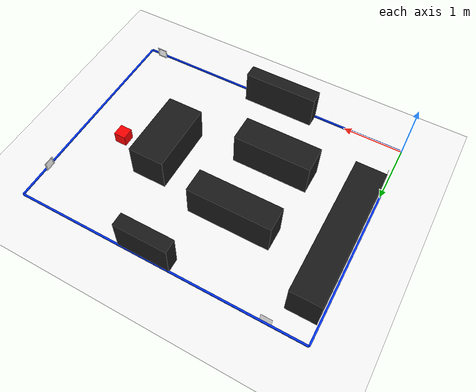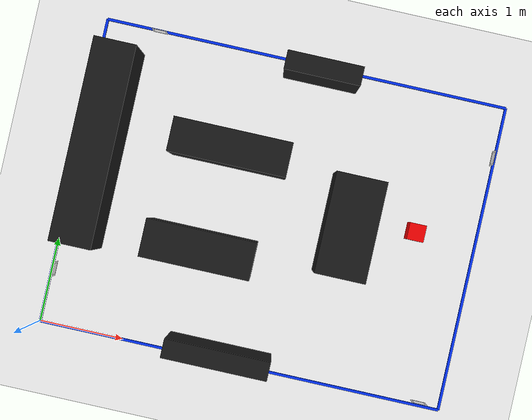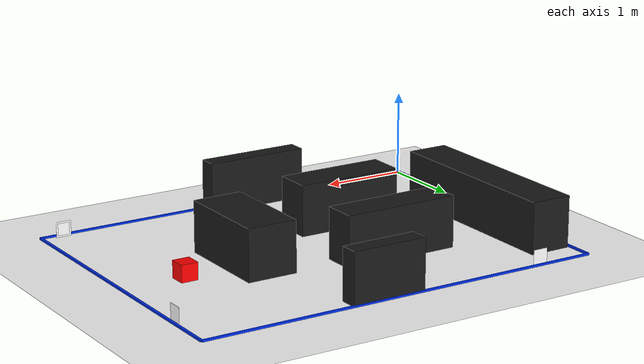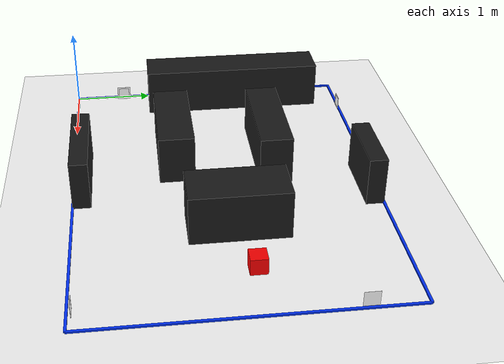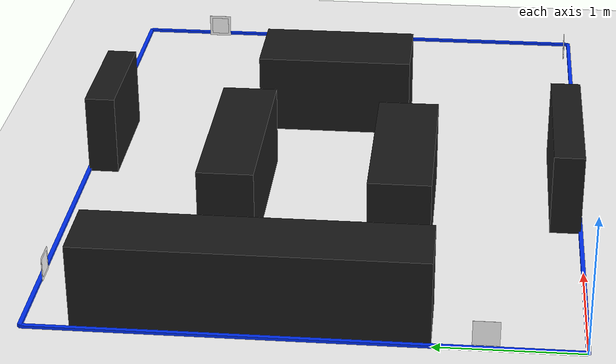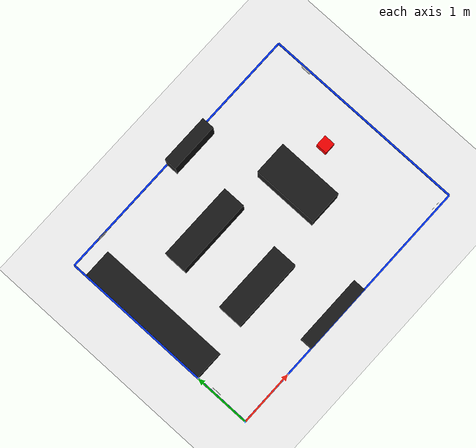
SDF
<?xml version="1.0" ?>
<sdf version="1.8">
  <world name="pista_octavo_world">
    <physics name="1ms" type="ignored">
      <max_step_size>0.001</max_step_size>
      <real_time_factor>1.0</real_time_factor>
    </physics>

    <plugin filename="ignition-gazebo-physics-system" name="ignition::gazebo::systems::Physics"/>
    <plugin filename="ignition-gazebo-user-commands-system" name="ignition::gazebo::systems::UserCommands"/>
    <plugin filename="ignition-gazebo-scene-broadcaster-system" name="ignition::gazebo::systems::SceneBroadcaster"/>
    <plugin filename="ignition-gazebo-sensors-system" name="ignition::gazebo::systems::Sensors">
      <render_engine>ogre2</render_engine>
    </plugin>

    <light type="directional" name="sun">
      <cast_shadows>true</cast_shadows>
      <pose>0 0 10 0 0 0</pose>
      <diffuse>0.8 0.8 0.8 1</diffuse>
      <specular>0.2 0.2 0.2 1</specular>
      <attenuation>
        <range>1000</range>
        <constant>0.9</constant>
        <linear>0.01</linear>
        <quadratic>0.001</quadratic>
      </attenuation>
      <direction>-0.5 0.1 -0.9</direction>
    </light>

    <include>
      <uri>model://pista_octavo</uri>
      <pose>0 0 0 0 0 0</pose>
    </include>

    <!-- ArUco markers para localización EKF -->
    <!-- Pista: x=[0, 4.84], y=[0, 3.67] — marcadores en las 4 esquinas interiores -->

    <!-- ArUco markers para localización EKF -->
<!-- Pista: x=[0, 4.84], y=[0, 3.67] -->
<!-- Marcadores pegados a las paredes de cada esquina, pero dentro de la pista -->

   <!-- ArUco markers para localización EKF -->
<!-- Pista aprox: x=[0, 4.84], y=[0, 3.67] -->
<!-- Marcadores pegados a paredes, mirando hacia el interior -->

<include>
  <name>marker_0</name>
  <uri>model://aruco_marker_0</uri>
  <pose>4.58 0.05 0.092 0 0 1.5708</pose>
</include>

<include>
  <name>marker_1</name>
  <uri>model://aruco_marker_1</uri>
  <pose>4.80 3.05 0.092 0 0 3.141592654</pose>
</include>

<include>
  <name>marker_2</name>
  <uri>model://aruco_marker_2</uri>
  <pose>0.65 3.65 0.092 0 0 4.71239</pose>
</include>

<include>
  <name>marker_3</name>
  <uri>model://aruco_marker_3</uri>
  <pose>0.05 0.65 0.092 0 0 0.0</pose>
</include>

<!-- Obstáculo sorpresa para probar Bug 0 -->
<model name="bug0_obstacle">
  <static>true</static>
  <pose>4.1 2.0 0.1 0 0 0</pose>
  <link name="link">
    <collision name="collision">
      <geometry><box><size>0.2 0.2 0.2</size></box></geometry>
    </collision>
    <visual name="visual">
      <geometry><box><size>0.2 0.2 0.2</size></box></geometry>
      <material>
        <ambient>1 0 0 1</ambient>
        <diffuse>1 0 0 1</diffuse>
      </material>
    </visual>
  </link>
</model>

  </world>
</sdf>

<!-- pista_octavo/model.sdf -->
<sdf version="1.8">
  <model name="pista_octavo">
    <static>true</static>

    <!-- Textured map floor. Copy map_similarity_crop.png into:
         models/manual_pallet_track/materials/textures/map_similarity_crop.png -->
    <link name="map_floor">
      <pose>2.4200 1.8350 0.001 0 0 0</pose>
      <visual name="map_floor_visual">
        <geometry>
          <plane>
            <normal>0 0 1</normal>
            <size>6.8400 5.6700</size>
          </plane>
        </geometry>
        <material>
          <ambient>1 1 1 1</ambient>
          <diffuse>1 1 1 1</diffuse>
          <pbr>
            <metal>
              <albedo_map>model://pista_octavo/materials/textures/map_similarity_crop.png</albedo_map>
            </metal>
          </pbr>
          <script>
            <uri>model://pista_octavo/materials/scripts</uri>
            <uri>model://pista_octavo/materials/textures</uri>
            <name>pista_octavo/MapTexture</name>
          </script>
        </material>
        <cast_shadows>false</cast_shadows>
      </visual>
      <collision name="map_floor_collision">
        <geometry>
          <plane>
            <normal>0 0 1</normal>
            <size>6.8400 5.6700</size>
          </plane>
        </geometry>
      </collision>
    </link>

    <!-- Blue outline for the main 4.84 x 3.67 m rectangle, visual only. -->

    <link name="main_track_bottom_reference">
      <pose>2.4200 0.0000 0.0100 0 0 0</pose>
      <visual name="main_track_bottom_reference_visual">
        <geometry>
          <box><size>4.8400 0.0300 0.0200</size></box>
        </geometry>
        <material>
          <ambient>0 0.2 1 1</ambient>
          <diffuse>0 0.2 1 1</diffuse>
        </material>
      </visual>
      <collision name="main_track_bottom_reference_collision">
        <geometry>
          <box><size>4.8400 0.0300 0.0200</size></box>
        </geometry>
      </collision>
    </link>

    <link name="main_track_top_reference">
      <pose>2.4200 3.6700 0.0100 0 0 0</pose>
      <visual name="main_track_top_reference_visual">
        <geometry>
          <box><size>4.8400 0.0300 0.0200</size></box>
        </geometry>
        <material>
          <ambient>0 0.2 1 1</ambient>
          <diffuse>0 0.2 1 1</diffuse>
        </material>
      </visual>
      <collision name="main_track_top_reference_collision">
        <geometry>
          <box><size>4.8400 0.0300 0.0200</size></box>
        </geometry>
      </collision>
    </link>

    <link name="main_track_left_reference">
      <pose>0.0000 1.8350 0.0100 0 0 0</pose>
      <visual name="main_track_left_reference_visual">
        <geometry>
          <box><size>0.0300 3.6700 0.0200</size></box>
        </geometry>
        <material>
          <ambient>0 0.2 1 1</ambient>
          <diffuse>0 0.2 1 1</diffuse>
        </material>
      </visual>
      <collision name="main_track_left_reference_collision">
        <geometry>
          <box><size>0.0300 3.6700 0.0200</size></box>
        </geometry>
      </collision>
    </link>

    <link name="main_track_right_reference">
      <pose>4.8400 1.8350 0.0100 0 0 0</pose>
      <visual name="main_track_right_reference_visual">
        <geometry>
          <box><size>0.0300 3.6700 0.0200</size></box>
        </geometry>
        <material>
          <ambient>0 0.2 1 1</ambient>
          <diffuse>0 0.2 1 1</diffuse>
        </material>
      </visual>
      <collision name="main_track_right_reference_collision">
        <geometry>
          <box><size>0.0300 3.6700 0.0200</size></box>
        </geometry>
      </collision>
    </link>

    <!-- Manual obstacle boxes generated from manual_obstacles.yaml. -->

    <link name="manual_obstacle_0">
      <pose>0.2750 2.1750 0.3000 0 0 0</pose>
      <visual name="manual_obstacle_0_visual">
        <geometry>
          <box><size>0.4900 2.3500 0.6000</size></box>
        </geometry>
        <material>
          <ambient>0.1 0.1 0.1 1</ambient>
          <diffuse>0.1 0.1 0.1 1</diffuse>
        </material>
      </visual>
      <collision name="manual_obstacle_0_collision">
        <geometry>
          <box><size>0.4900 2.3500 0.6000</size></box>
        </geometry>
      </collision>
    </link>
    <link name="manual_obstacle_1">
      <pose>1.7850 2.4700 0.3000 0 0 0</pose>
      <visual name="manual_obstacle_1_visual">
        <geometry>
          <box><size>1.3700 0.4000 0.6000</size></box>
        </geometry>
        <material>
          <ambient>0.1 0.1 0.1 1</ambient>
          <diffuse>0.1 0.1 0.1 1</diffuse>
        </material>
      </visual>
      <collision name="manual_obstacle_1_collision">
        <geometry>
          <box><size>1.3700 0.4000 0.6000</size></box>
        </geometry>
      </collision>
    </link>
    <link name="manual_obstacle_2">
      <pose>1.6850 1.2700 0.3000 0 0 0</pose>
      <visual name="manual_obstacle_2_visual">
        <geometry>
          <box><size>1.2700 0.4400 0.6000</size></box>
        </geometry>
        <material>
          <ambient>0.1 0.1 0.1 1</ambient>
          <diffuse>0.1 0.1 0.1 1</diffuse>
        </material>
      </visual>
      <collision name="manual_obstacle_2_collision">
        <geometry>
          <box><size>1.2700 0.4400 0.6000</size></box>
        </geometry>
      </collision>
    </link>
    <link name="manual_obstacle_3">
      <pose>3.3050 1.8850 0.3000 0 0 0</pose>
      <visual name="manual_obstacle_3_visual">
        <geometry>
          <box><size>0.5900 1.1700 0.6000</size></box>
        </geometry>
        <material>
          <ambient>0.1 0.1 0.1 1</ambient>
          <diffuse>0.1 0.1 0.1 1</diffuse>
        </material>
      </visual>
      <collision name="manual_obstacle_3_collision">
        <geometry>
          <box><size>0.5900 1.1700 0.6000</size></box>
        </geometry>
      </collision>
    </link>
    <link name="manual_obstacle_4">
      <pose>2.6200 3.5600 0.3000 0 0 0</pose>
      <visual name="manual_obstacle_4_visual">
        <geometry>
          <box><size>0.8800 0.2200 0.6000</size></box>
        </geometry>
        <material>
          <ambient>0.1 0.1 0.1 1</ambient>
          <diffuse>0.1 0.1 0.1 1</diffuse>
        </material>
      </visual>
      <collision name="manual_obstacle_4_collision">
        <geometry>
          <box><size>0.8800 0.2200 0.6000</size></box>
        </geometry>
      </collision>
    </link>
    <link name="manual_obstacle_5">
      <pose>2.1500 0.1100 0.3000 0 0 0</pose>
      <visual name="manual_obstacle_5_visual">
        <geometry>
          <box><size>1.2200 0.2200 0.6000</size></box>
        </geometry>
        <material>
          <ambient>0.1 0.1 0.1 1</ambient>
          <diffuse>0.1 0.1 0.1 1</diffuse>
        </material>
      </visual>
      <collision name="manual_obstacle_5_collision">
        <geometry>
          <box><size>1.2200 0.2200 0.6000</size></box>
        </geometry>
      </collision>
    </link>
  </model>
</sdf>

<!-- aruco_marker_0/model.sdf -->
<sdf version="1.5">
    <model name='aruco_marker_1'>
    <pose>0 0 0 0 0 0</pose>
    <static>true</static>
        <link name='link'>
            <inertial>
                <pose>0 0 0 0 -0 0</pose>
                <mass>0.281</mass>
                <inertia>
                    <ixx>0.0006167</ixx>
                    <ixy>0</ixy>
                    <ixz>0</ixz>
                    <iyy>0.0006167</iyy>
                    <iyz>0</iyz>
                    <izz>0.0006167</izz>
                </inertia>
            </inertial>

            <visual name='box_visual'>
                <cast_shadows>0</cast_shadows>
                    <geometry>
                        <box>
                            <size>0.001 0.18 0.18</size>
                        </box>
                    </geometry>
                <material>
                    <ambient>1 1 1 1</ambient>
                    <diffuse>1 1 1 1</diffuse>
                    <specular>1 1 1 1</specular>
                    <emissive>0.6 0.6 0.6 1</emissive>
                </material>
            </visual>

            <visual name='aruco_visual1'>
                <cast_shadows>0</cast_shadows>
                <pose>0.00065 0.0 0.0 1.5708 0.0 1.5708</pose>
                <geometry>
                    <plane>
                        <normal>0 0 1</normal>
                        <size>0.14 0.14</size>
                    </plane>
                </geometry>
                <material>
                    <pbr>
                        <metal>
                            <albedo_map>model://aruco_marker_0/materials/textures/marker0.png</albedo_map>
                            <normal_map>model://aruco_marker_0/materials/textures/marker0.png</normal_map>
                        </metal>
                    </pbr>
                    <ambient>1 1 1 1</ambient>
                    <diffuse>1 1 1 1</diffuse>
                    <specular>1 1 1 1</specular>
                    <emissive>0.0 0.0 0.0 1</emissive>
                </material>
            </visual>

        </link>
    </model>
</sdf>

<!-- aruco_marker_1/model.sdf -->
<sdf version="1.5">

    <model name='aruco_marker_2'>
        <pose>0 0 0 0 0 0</pose>
        <static>true</static>
        <link name='link'>
            <inertial>
                <pose>0 0 0 0 -0 0</pose>
                <mass>0.281</mass>
                <inertia>
                    <ixx>0.0006167</ixx>
                    <ixy>0</ixy>
                    <ixz>0</ixz>
                    <iyy>0.0006167</iyy>
                    <iyz>0</iyz>
                    <izz>0.0006167</izz>
                </inertia>
            </inertial>

            <visual name='box_visual'>
                <cast_shadows>0</cast_shadows>
                    <geometry>
                        <box>
                            <size>0.001 0.18 0.18</size>
                        </box>
                    </geometry>
                    <material>
                    <ambient>1 1 1 1</ambient>
                    <diffuse>1 1 1 1</diffuse>
                    <specular>1 1 1 1</specular>
                    <emissive>0.6 0.6 0.6 1</emissive>
                </material>
            </visual>

            <visual name='aruco_visual1'>
                <cast_shadows>0</cast_shadows>
                <pose>0.00065 0.0 0.0 1.5708 0.0 1.5708</pose>
                <geometry>
                    <plane>
                        <normal>0 0 1</normal>
                        <size>0.14 0.14</size>
                    </plane>
                </geometry>
                <material>
                    <pbr>
                        <metal>
                            <albedo_map>model://aruco_marker_1/materials/textures/marker1.png</albedo_map>
                            <normal_map>model://aruco_marker_1/materials/textures/marker1.png</normal_map>
                        </metal>
                    </pbr>
                    <ambient>1 1 1 1</ambient>
                    <diffuse>1 1 1 1</diffuse>
                    <specular>1 1 1 1</specular>
                    <emissive>0.0 0.0 0.0 1</emissive>
                </material>
            </visual>

        </link>
    </model>
</sdf>

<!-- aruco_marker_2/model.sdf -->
<sdf version="1.5">

    <model name='aruco_marker_3'>
        <pose>0 0 0 0 0 0</pose>
        <static>true</static>
        <link name='link'>
            <inertial>
                <pose>0 0 0 0 -0 0</pose>
                <mass>0.281</mass>
                <inertia>
                    <ixx>0.0006167</ixx>
                    <ixy>0</ixy>
                    <ixz>0</ixz>
                    <iyy>0.0006167</iyy>
                    <iyz>0</iyz>
                    <izz>0.0006167</izz>
                </inertia>
            </inertial>

            <visual name='box_visual'>
                <cast_shadows>0</cast_shadows>
                    <geometry>
                        <box>
                            <size>0.001 0.18 0.18</size>
                        </box>
                    </geometry>
                <material>
                    <ambient>1 1 1 1</ambient>
                    <diffuse>1 1 1 1</diffuse>
                    <specular>1 1 1 1</specular>
                    <emissive>0.6 0.6 0.6 1</emissive>
                </material>
            </visual>

            <visual name='aruco_visual1'>
                <cast_shadows>0</cast_shadows>
                <pose>0.00065 0.0 0.0 1.5708 0.0 1.5708</pose>
                <geometry>
                    <plane>
                        <normal>0 0 1</normal>
                        <size>0.14 0.14</size>
                    </plane>
                </geometry>
                <material>
                    <pbr>
                        <metal>
                            <albedo_map>model://aruco_marker_2/materials/textures/marker2.png</albedo_map>
                            <normal_map>model://aruco_marker_2/materials/textures/marker2.png</normal_map>
                        </metal>
                    </pbr>
                    <ambient>1 1 1 1</ambient>
                    <diffuse>1 1 1 1</diffuse>
                    <specular>1 1 1 1</specular>
                    <emissive>0.0 0.0 0.0 1</emissive>
                </material>
            </visual>

        </link>
    </model>
</sdf>

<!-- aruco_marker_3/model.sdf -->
<sdf version="1.5">

    <model name='aruco_marker_4'>
        <pose>0 0 0 0 0 0</pose>
        <static>true</static>
        <link name='link'>
            <inertial>
                <pose>0 0 0 0 -0 0</pose>
                <mass>0.281</mass>
                <inertia>
                    <ixx>0.0006167</ixx>
                    <ixy>0</ixy>
                    <ixz>0</ixz>
                    <iyy>0.0006167</iyy>
                    <iyz>0</iyz>
                    <izz>0.0006167</izz>
                </inertia>
            </inertial>

            <visual name='box_visual'>
                <cast_shadows>0</cast_shadows>
                    <geometry>
                        <box>
                            <size>0.001 0.18 0.18</size>
                        </box>
                    </geometry>
                <material>
                    <ambient>1 1 1 1</ambient>
                    <diffuse>1 1 1 1</diffuse>
                    <specular>1 1 1 1</specular>
                    <emissive>0.6 0.6 0.6 1</emissive>
                </material>
            </visual>

            <visual name='aruco_visual1'>
                <cast_shadows>0</cast_shadows>
                <pose>0.00065 0.0 0.0 1.5708 0.0 1.5708</pose>
                <geometry>
                    <plane>
                        <normal>0 0 1</normal>
                        <size>0.14 0.14</size>
                    </plane>
                </geometry>
                <material>
                    <pbr>
                        <metal>
                            <albedo_map>model://aruco_marker_3/materials/textures/marker3.png</albedo_map>
                            <normal_map>model://aruco_marker_3/materials/textures/marker3.png</normal_map>
                        </metal>
                    </pbr>
                    <ambient>1 1 1 1</ambient>
                    <diffuse>1 1 1 1</diffuse>
                    <specular>1 1 1 1</specular>
                    <emissive>0.0 0.0 0.0 1</emissive>
                </material>
            </visual>

        </link>
    </model>
</sdf>
